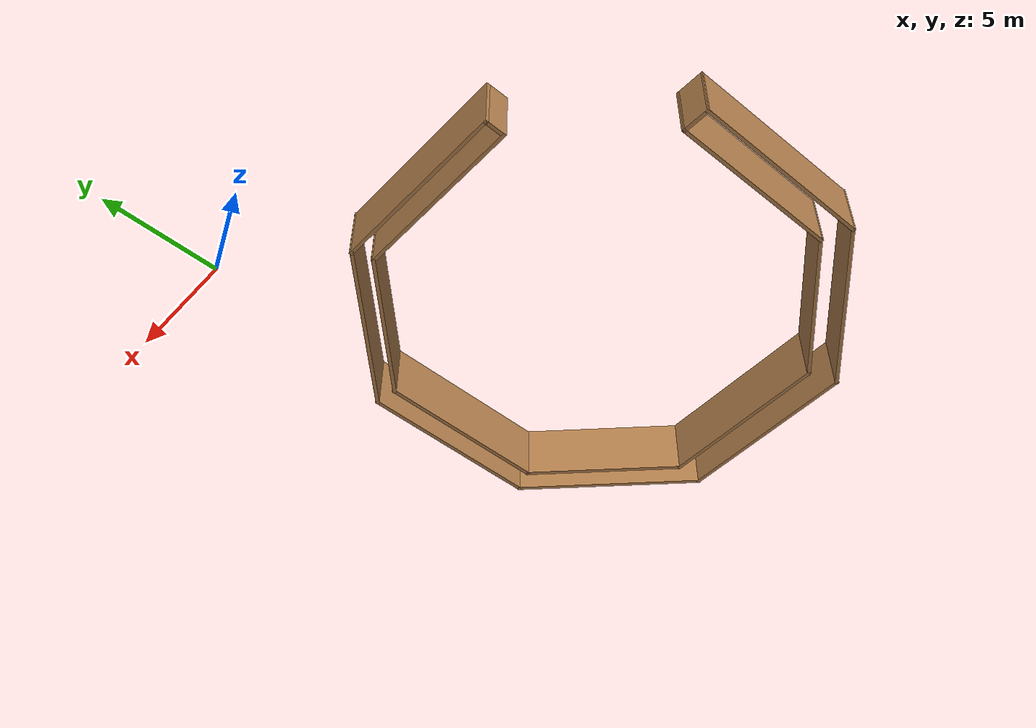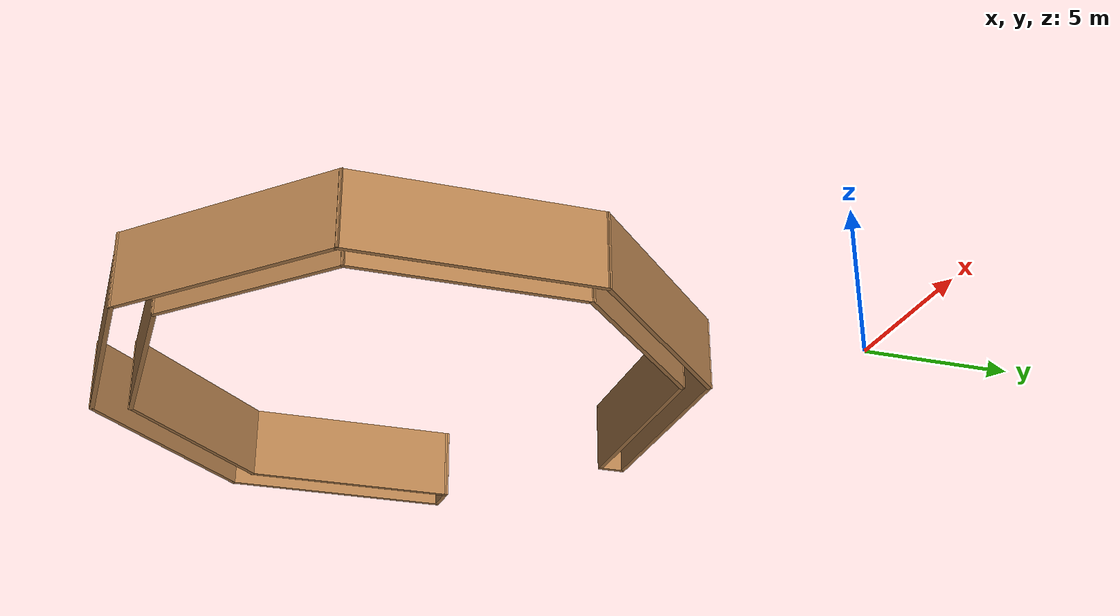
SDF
<?xml version='1.0'?>
<sdf version='1.6'>
  <model name='Octagon'>
    <pose frame=''>-8.01047 -12.8879 0 0 -0 0</pose>
    <link name='Wall_31'>
      <collision name='Wall_31_Collision'>
        <geometry>
          <box>
            <size>8 0.15 2.5</size>
          </box>
        </geometry>
        <pose frame=''>0 0 1.25 0 -0 0</pose>
      </collision>
      <visual name='Wall_31_Visual'>
        <pose frame=''>0 0 1.25 0 -0 0</pose>
        <geometry>
          <box>
            <size>8 0.15 2.5</size>
          </box>
        </geometry>
        <material>
          <script>
            <uri>file://media/materials/scripts/gazebo.material</uri>
            <name>Gazebo/Wood</name>
          </script>
          <ambient>1 1 1 1</ambient>
        </material>
        <meta>
          <layer>0</layer>
        </meta>
      </visual>
      <pose frame=''>-9.47579 0 0 0 0 -1.5708</pose>
    </link>
    <link name='Wall_32'>
      <collision name='Wall_32_Collision'>
        <geometry>
          <box>
            <size>8 0.15 2.5</size>
          </box>
        </geometry>
        <pose frame=''>0 0 1.25 0 -0 0</pose>
      </collision>
      <visual name='Wall_32_Visual'>
        <pose frame=''>0 0 1.25 0 -0 0</pose>
        <geometry>
          <box>
            <size>8 0.15 2.5</size>
          </box>
        </geometry>
        <material>
          <script>
            <uri>file://media/materials/scripts/gazebo.material</uri>
            <name>Gazebo/Wood</name>
          </script>
          <ambient>1 1 1 1</ambient>
        </material>
        <meta>
          <layer>0</layer>
        </meta>
      </visual>
      <pose frame=''>-6.70039 -6.7004 0 0 0 -0.785398</pose>
    </link>
    <link name='Wall_33'>
      <collision name='Wall_33_Collision'>
        <geometry>
          <box>
            <size>8 0.15 2.5</size>
          </box>
        </geometry>
        <pose frame=''>0 0 1.25 0 -0 0</pose>
      </collision>
      <visual name='Wall_33_Visual'>
        <pose frame=''>0 0 1.25 0 -0 0</pose>
        <geometry>
          <box>
            <size>8 0.15 2.5</size>
          </box>
        </geometry>
        <material>
          <script>
            <uri>file://media/materials/scripts/gazebo.material</uri>
            <name>Gazebo/Wood</name>
          </script>
          <ambient>1 1 1 1</ambient>
        </material>
        <meta>
          <layer>0</layer>
        </meta>
      </visual>
      <pose frame=''>-1e-06 -9.47579 0 0 -0 0</pose>
    </link>
    <link name='Wall_34'>
      <collision name='Wall_34_Collision'>
        <geometry>
          <box>
            <size>8 0.15 2.5</size>
          </box>
        </geometry>
        <pose frame=''>0 0 1.25 0 -0 0</pose>
      </collision>
      <visual name='Wall_34_Visual'>
        <pose frame=''>0 0 1.25 0 -0 0</pose>
        <geometry>
          <box>
            <size>8 0.15 2.5</size>
          </box>
        </geometry>
        <material>
          <script>
            <uri>file://media/materials/scripts/gazebo.material</uri>
            <name>Gazebo/Wood</name>
          </script>
          <ambient>1 1 1 1</ambient>
        </material>
        <meta>
          <layer>0</layer>
        </meta>
      </visual>
      <pose frame=''>6.70039 -6.7004 0 0 -0 0.785398</pose>
    </link>
    <link name='Wall_35'>
      <collision name='Wall_35_Collision'>
        <geometry>
          <box>
            <size>8 0.15 2.5</size>
          </box>
        </geometry>
        <pose frame=''>0 0 1.25 0 -0 0</pose>
      </collision>
      <visual name='Wall_35_Visual'>
        <pose frame=''>0 0 1.25 0 -0 0</pose>
        <geometry>
          <box>
            <size>8 0.15 2.5</size>
          </box>
        </geometry>
        <material>
          <script>
            <uri>file://media/materials/scripts/gazebo.material</uri>
            <name>Gazebo/Wood</name>
          </script>
          <ambient>1 1 1 1</ambient>
        </material>
        <meta>
          <layer>0</layer>
        </meta>
      </visual>
      <pose frame=''>9.47579 0 0 0 -0 1.5708</pose>
    </link>
    <link name='Wall_36'>
      <collision name='Wall_36_Collision'>
        <geometry>
          <box>
            <size>8 0.15 2.5</size>
          </box>
        </geometry>
        <pose frame=''>0 0 1.25 0 -0 0</pose>
      </collision>
      <visual name='Wall_36_Visual'>
        <pose frame=''>0 0 1.25 0 -0 0</pose>
        <geometry>
          <box>
            <size>8 0.15 2.5</size>
          </box>
        </geometry>
        <material>
          <script>
            <uri>file://media/materials/scripts/gazebo.material</uri>
            <name>Gazebo/Wood</name>
          </script>
          <ambient>1 1 1 1</ambient>
        </material>
        <meta>
          <layer>0</layer>
        </meta>
      </visual>
      <pose frame=''>6.70039 6.70039 0 0 -0 2.35619</pose>
    </link>
    <link name='Wall_37'>
      <collision name='Wall_37_Collision'>
        <geometry>
          <box>
            <size>8 0.15 2.5</size>
          </box>
        </geometry>
        <pose frame=''>0 0 1.25 0 -0 0</pose>
      </collision>
      <visual name='Wall_37_Visual'>
        <pose frame=''>0 0 1.25 0 -0 0</pose>
        <geometry>
          <box>
            <size>8 0.15 2.5</size>
          </box>
        </geometry>
        <material>
          <script>
            <uri>file://media/materials/scripts/gazebo.material</uri>
            <name>Gazebo/Wood</name>
          </script>
          <ambient>1 1 1 1</ambient>
        </material>
        <meta>
          <layer>0</layer>
        </meta>
      </visual>
      <pose frame=''>-1e-06 9.47579 0 0 -0 3.14159</pose>
    </link>
    <link name='Wall_38'>
      <collision name='Wall_38_Collision'>
        <geometry>
          <box>
            <size>1 0.15 2.5</size>
          </box>
        </geometry>
        <pose frame=''>0 0 1.25 0 -0 0</pose>
      </collision>
      <visual name='Wall_38_Visual'>
        <pose frame=''>0 0 1.25 0 -0 0</pose>
        <geometry>
          <box>
            <size>1 0.15 2.5</size>
          </box>
        </geometry>
        <material>
          <script>
            <uri>file://media/materials/scripts/gazebo.material</uri>
            <name>Gazebo/Wood</name>
          </script>
          <ambient>1 1 1 1</ambient>
        </material>
        <meta>
          <layer>0</layer>
        </meta>
      </visual>
      <pose frame=''>-3.925 9.05079 0 0 0 -1.5708</pose>
    </link>
    <link name='Wall_39'>
      <collision name='Wall_39_Collision'>
        <geometry>
          <box>
            <size>7.75 0.15 2.5</size>
          </box>
        </geometry>
        <pose frame=''>0 0 1.25 0 -0 0</pose>
      </collision>
      <visual name='Wall_39_Visual'>
        <pose frame=''>0 0 1.25 0 -0 0</pose>
        <geometry>
          <box>
            <size>7.75 0.15 2.5</size>
          </box>
        </geometry>
        <material>
          <script>
            <uri>file://media/materials/scripts/gazebo.material</uri>
            <name>Gazebo/Wood</name>
          </script>
          <ambient>1 1 1 1</ambient>
        </material>
        <meta>
          <layer>0</layer>
        </meta>
      </visual>
      <pose frame=''>-0.125001 8.62579 0 0 -0 0</pose>
    </link>
    <link name='Wall_40'>
      <collision name='Wall_40_Collision'>
        <geometry>
          <box>
            <size>7 0.15 2.5</size>
          </box>
        </geometry>
        <pose frame=''>0 0 1.25 0 -0 0</pose>
      </collision>
      <visual name='Wall_40_Visual'>
        <pose frame=''>0 0 1.25 0 -0 0</pose>
        <geometry>
          <box>
            <size>7 0.15 2.5</size>
          </box>
        </geometry>
        <material>
          <script>
            <uri>file://media/materials/scripts/gazebo.material</uri>
            <name>Gazebo/Wood</name>
          </script>
          <ambient>1 1 1 1</ambient>
        </material>
        <meta>
          <layer>0</layer>
        </meta>
      </visual>
      <pose frame=''>6.09684 6.20395 0 0 0 -0.785398</pose>
    </link>
    <link name='Wall_41'>
      <collision name='Wall_41_Collision'>
        <geometry>
          <box>
            <size>7.5 0.15 2.5</size>
          </box>
        </geometry>
        <pose frame=''>0 0 1.25 0 -0 0</pose>
      </collision>
      <visual name='Wall_41_Visual'>
        <pose frame=''>0 0 1.25 0 -0 0</pose>
        <geometry>
          <box>
            <size>7.5 0.15 2.5</size>
          </box>
        </geometry>
        <material>
          <script>
            <uri>file://media/materials/scripts/gazebo.material</uri>
            <name>Gazebo/Wood</name>
          </script>
          <ambient>1 1 1 1</ambient>
        </material>
        <meta>
          <layer>0</layer>
        </meta>
      </visual>
      <pose frame=''>8.51868 0.107107 0 0 0 -1.5708</pose>
    </link>
    <link name='Wall_42'>
      <collision name='Wall_42_Collision'>
        <geometry>
          <box>
            <size>6.75 0.15 2.5</size>
          </box>
        </geometry>
        <pose frame=''>0 0 1.25 0 -0 0</pose>
      </collision>
      <visual name='Wall_42_Visual'>
        <pose frame=''>0 0 1.25 0 -0 0</pose>
        <geometry>
          <box>
            <size>6.75 0.15 2.5</size>
          </box>
        </geometry>
        <material>
          <script>
            <uri>file://media/materials/scripts/gazebo.material</uri>
            <name>Gazebo/Wood</name>
          </script>
          <ambient>1 1 1 1</ambient>
        </material>
        <meta>
          <layer>0</layer>
        </meta>
      </visual>
      <pose frame=''>6.18523 -5.90135 0 0 0 -2.35619</pose>
    </link>
    <link name='Wall_43'>
      <collision name='Wall_43_Collision'>
        <geometry>
          <box>
            <size>7.5 0.15 2.5</size>
          </box>
        </geometry>
        <pose frame=''>0 0 1.25 0 -0 0</pose>
      </collision>
      <visual name='Wall_43_Visual'>
        <pose frame=''>0 0 1.25 0 -0 0</pose>
        <geometry>
          <box>
            <size>7.5 0.15 2.5</size>
          </box>
        </geometry>
        <material>
          <script>
            <uri>file://media/materials/scripts/gazebo.material</uri>
            <name>Gazebo/Wood</name>
          </script>
          <ambient>1 1 1 1</ambient>
        </material>
        <meta>
          <layer>0</layer>
        </meta>
      </visual>
      <pose frame=''>0.176776 -8.2348 0 0 -0 3.14159</pose>
    </link>
    <link name='Wall_44'>
      <collision name='Wall_44_Collision'>
        <geometry>
          <box>
            <size>7 0.15 2.5</size>
          </box>
        </geometry>
        <pose frame=''>0 0 1.25 0 -0 0</pose>
      </collision>
      <visual name='Wall_44_Visual'>
        <pose frame=''>0 0 1.25 0 -0 0</pose>
        <geometry>
          <box>
            <size>7 0.15 2.5</size>
          </box>
        </geometry>
        <material>
          <script>
            <uri>file://media/materials/scripts/gazebo.material</uri>
            <name>Gazebo/Wood</name>
          </script>
          <ambient>1 1 1 1</ambient>
        </material>
        <meta>
          <layer>0</layer>
        </meta>
      </visual>
      <pose frame=''>-5.92007 -5.81296 0 0 -0 2.35619</pose>
    </link>
    <link name='Wall_45'>
      <collision name='Wall_45_Collision'>
        <geometry>
          <box>
            <size>7.5 0.15 2.5</size>
          </box>
        </geometry>
        <pose frame=''>0 0 1.25 0 -0 0</pose>
      </collision>
      <visual name='Wall_45_Visual'>
        <pose frame=''>0 0 1.25 0 -0 0</pose>
        <geometry>
          <box>
            <size>7.5 0.15 2.5</size>
          </box>
        </geometry>
        <material>
          <script>
            <uri>file://media/materials/scripts/gazebo.material</uri>
            <name>Gazebo/Wood</name>
          </script>
          <ambient>1 1 1 1</ambient>
        </material>
        <meta>
          <layer>0</layer>
        </meta>
      </visual>
      <pose frame=''>-8.34191 0.283884 0 0 -0 1.5708</pose>
    </link>
    <link name='Wall_46'>
      <collision name='Wall_46_Collision'>
        <geometry>
          <box>
            <size>1.28439 0.15 2.5</size>
          </box>
        </geometry>
        <pose frame=''>0 0 1.25 0 -0 0</pose>
      </collision>
      <visual name='Wall_46_Visual'>
        <pose frame=''>0 0 1.25 0 -0 0</pose>
        <geometry>
          <box>
            <size>1.28439 0.15 2.5</size>
          </box>
        </geometry>
        <material>
          <script>
            <uri>file://media/materials/scripts/gazebo.material</uri>
            <name>Gazebo/Wood</name>
          </script>
          <ambient>1 1 1 1</ambient>
        </material>
        <meta>
          <layer>0</layer>
        </meta>
      </visual>
      <pose frame=''>-8.90885 3.94194 0 0 0 -3.11172</pose>
    </link>
    <static>1</static>
  </model>
</sdf>
